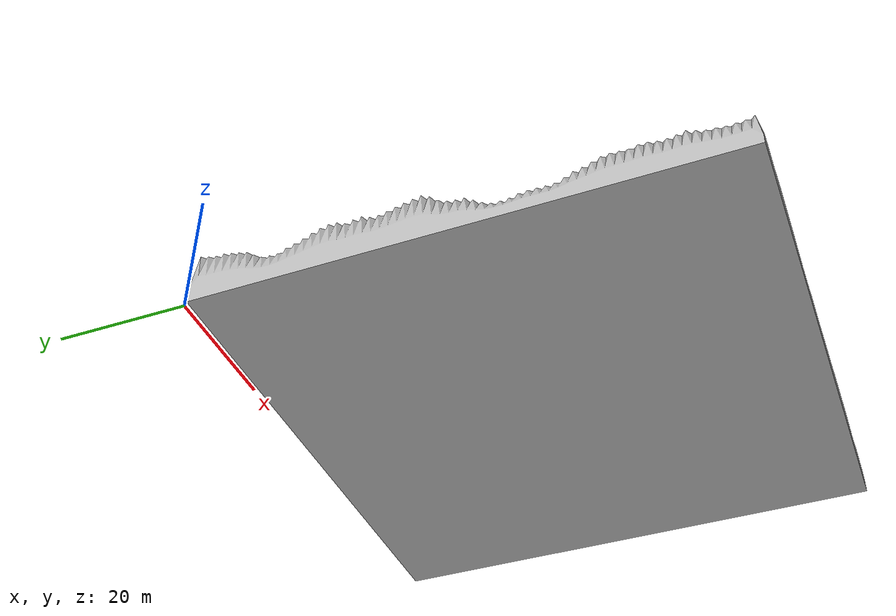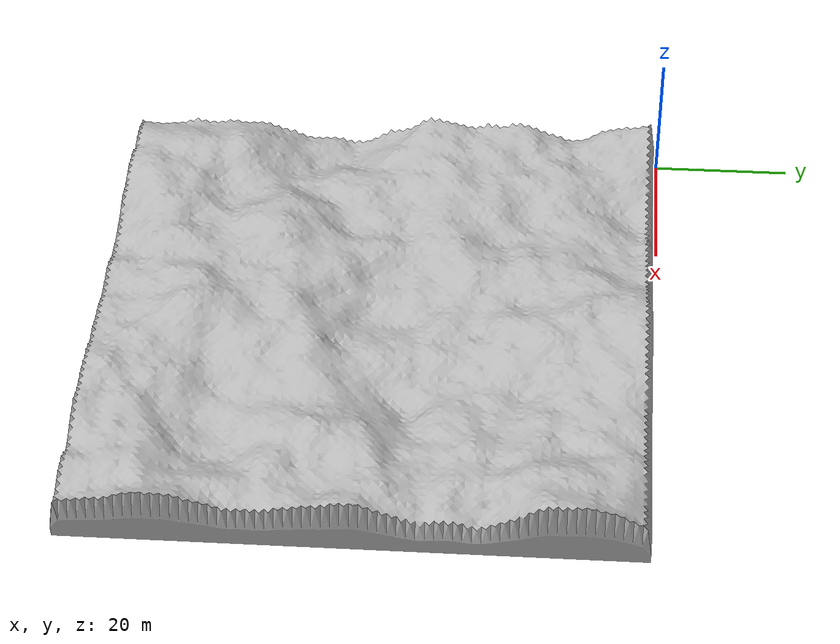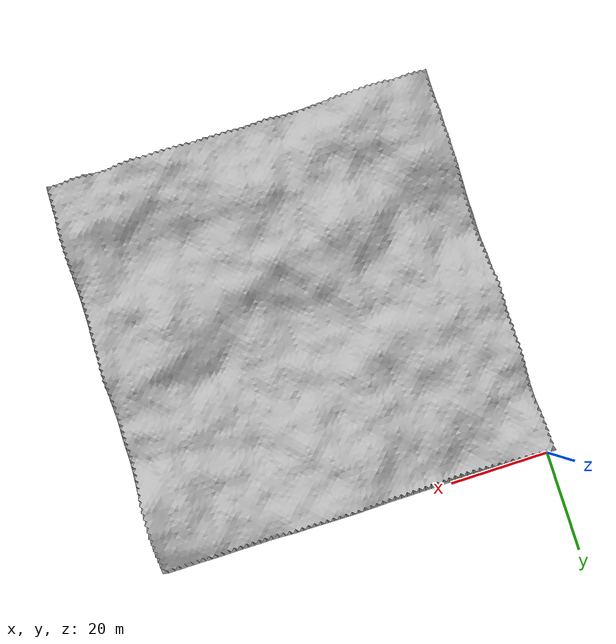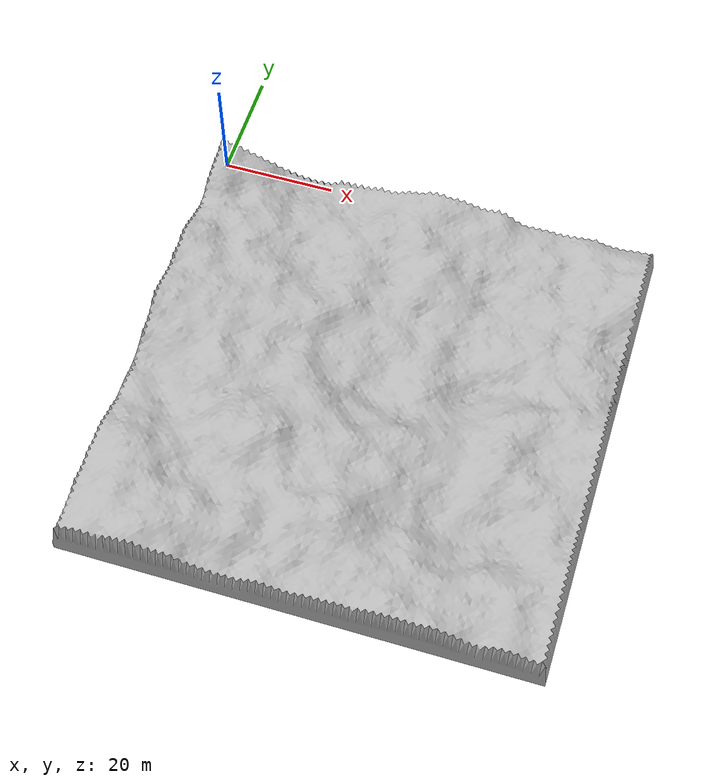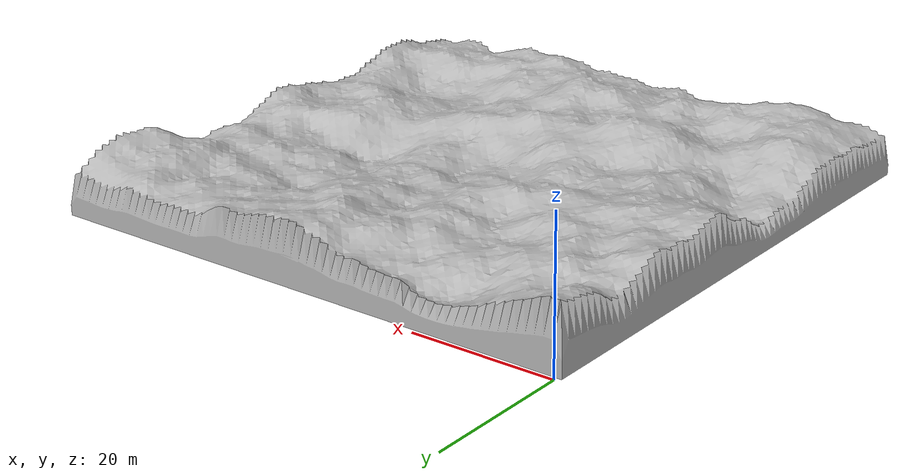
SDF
<?xml version="1.0" ?>
<sdf version="1.6">
  <model name="hill2">
    <static>true</static> <!-- Set to true if the model should not move -->
    <pose>0 0 0 0 0 0</pose>

    <!--z offset is -18 for full scale-->

    <link name="link">
      <collision name="hill2_collision">

        <geometry>

          <mesh>
            <uri>model://meshes/hills.stl</uri>
            <scale>4 4 4</scale>
          </mesh>
        </geometry>
      </collision>
      <visual name="hill2_visual">

        <geometry>
          <mesh>
            <uri>model://meshes/hills.stl</uri>
            <scale>4 4 4</scale>
          </mesh>
        </geometry>
        <material>
          <script>
            <uri>model://materials/scripts/sand_pebbles.material</uri>
            <name>custom_ground/Image</name>
          </script>
        </material>
      </visual>
    </link>
  </model>
</sdf>
